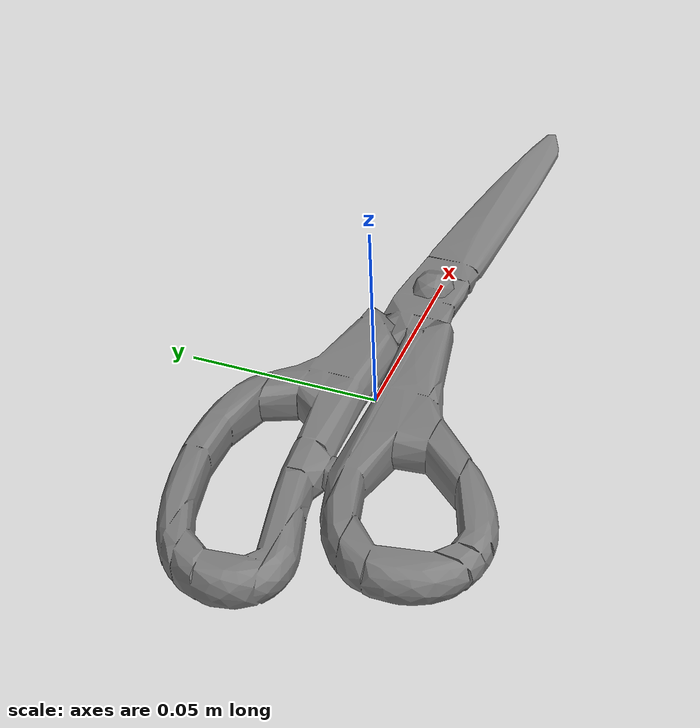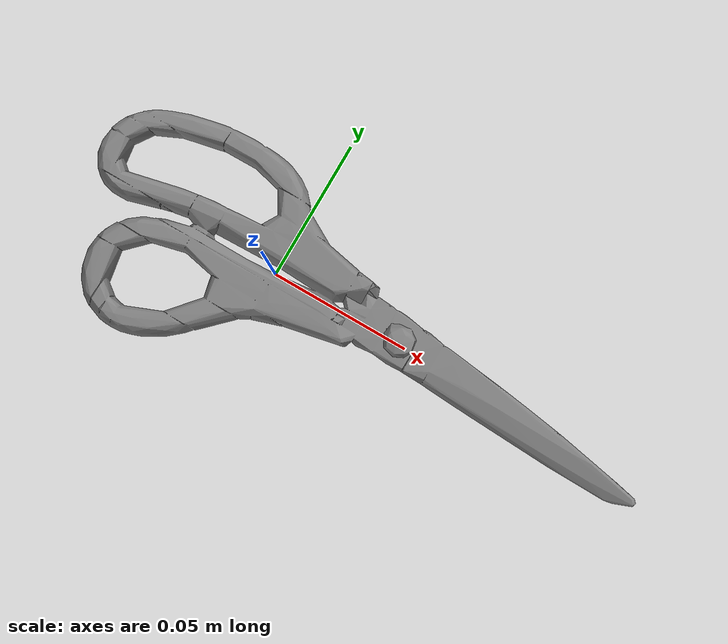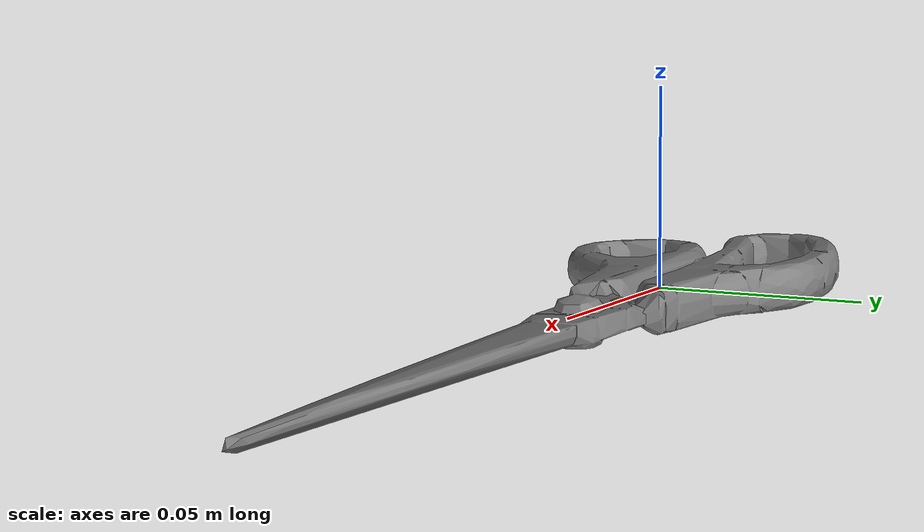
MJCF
<mujoco model="scissors_Diamond_Visions_Scissors_Red_M">
  <default>
    <default class="visual">
      <geom group="2" type="mesh" contype="0" conaffinity="0" />
    </default>
    <default class="collision">
      <geom group="3" type="mesh" />
    </default>
  </default>
  <asset>
    <mesh file="scissors_Diamond_Visions_Scissors_Red_M.stl" />
    <mesh file="scissors_Diamond_Visions_Scissors_Red_M_collision_0.stl" />
    <mesh file="scissors_Diamond_Visions_Scissors_Red_M_collision_1.stl" />
    <mesh file="scissors_Diamond_Visions_Scissors_Red_M_collision_2.stl" />
    <mesh file="scissors_Diamond_Visions_Scissors_Red_M_collision_3.stl" />
    <mesh file="scissors_Diamond_Visions_Scissors_Red_M_collision_4.stl" />
    <mesh file="scissors_Diamond_Visions_Scissors_Red_M_collision_5.stl" />
    <mesh file="scissors_Diamond_Visions_Scissors_Red_M_collision_6.stl" />
    <mesh file="scissors_Diamond_Visions_Scissors_Red_M_collision_7.stl" />
    <mesh file="scissors_Diamond_Visions_Scissors_Red_M_collision_8.stl" />
    <mesh file="scissors_Diamond_Visions_Scissors_Red_M_collision_9.stl" />
    <mesh file="scissors_Diamond_Visions_Scissors_Red_M_collision_10.stl" />
    <mesh file="scissors_Diamond_Visions_Scissors_Red_M_collision_11.stl" />
    <mesh file="scissors_Diamond_Visions_Scissors_Red_M_collision_12.stl" />
    <mesh file="scissors_Diamond_Visions_Scissors_Red_M_collision_13.stl" />
    <mesh file="scissors_Diamond_Visions_Scissors_Red_M_collision_14.stl" />
    <mesh file="scissors_Diamond_Visions_Scissors_Red_M_collision_15.stl" />
  </asset>
  <worldbody>
    <body name="scissors_Diamond_Visions_Scissors_Red_M">
      <geom mesh="scissors_Diamond_Visions_Scissors_Red_M" class="visual" />
      <geom mesh="scissors_Diamond_Visions_Scissors_Red_M_collision_0" class="collision" />
      <geom mesh="scissors_Diamond_Visions_Scissors_Red_M_collision_1" class="collision" />
      <geom mesh="scissors_Diamond_Visions_Scissors_Red_M_collision_2" class="collision" />
      <geom mesh="scissors_Diamond_Visions_Scissors_Red_M_collision_3" class="collision" />
      <geom mesh="scissors_Diamond_Visions_Scissors_Red_M_collision_4" class="collision" />
      <geom mesh="scissors_Diamond_Visions_Scissors_Red_M_collision_5" class="collision" />
      <geom mesh="scissors_Diamond_Visions_Scissors_Red_M_collision_6" class="collision" />
      <geom mesh="scissors_Diamond_Visions_Scissors_Red_M_collision_7" class="collision" />
      <geom mesh="scissors_Diamond_Visions_Scissors_Red_M_collision_8" class="collision" />
      <geom mesh="scissors_Diamond_Visions_Scissors_Red_M_collision_9" class="collision" />
      <geom mesh="scissors_Diamond_Visions_Scissors_Red_M_collision_10" class="collision" />
      <geom mesh="scissors_Diamond_Visions_Scissors_Red_M_collision_11" class="collision" />
      <geom mesh="scissors_Diamond_Visions_Scissors_Red_M_collision_12" class="collision" />
      <geom mesh="scissors_Diamond_Visions_Scissors_Red_M_collision_13" class="collision" />
      <geom mesh="scissors_Diamond_Visions_Scissors_Red_M_collision_14" class="collision" />
      <geom mesh="scissors_Diamond_Visions_Scissors_Red_M_collision_15" class="collision" />
    </body>
  </worldbody>
</mujoco>
